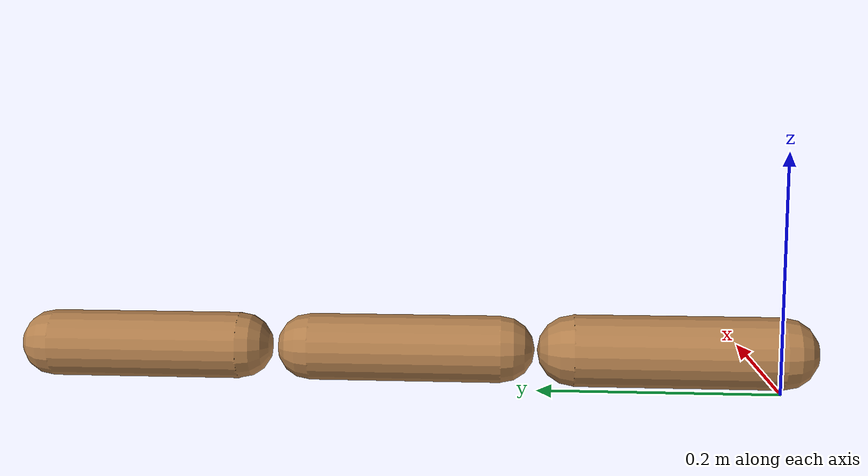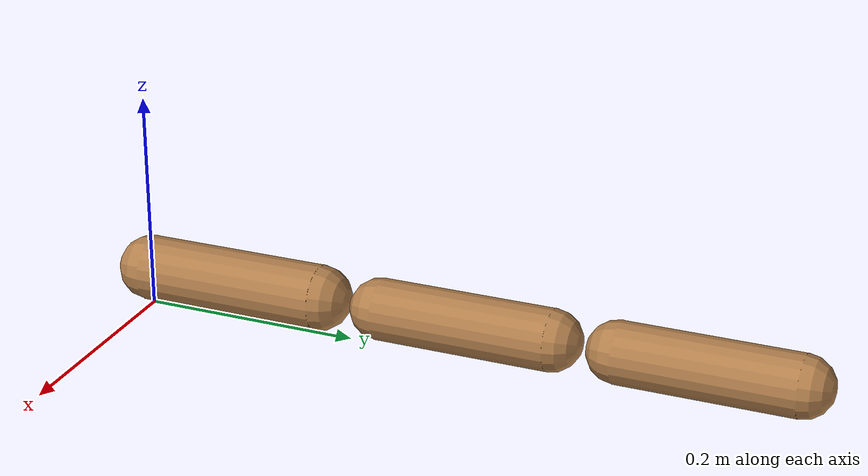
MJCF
<mujoco model="planar point mass">
    <visual>
        <quality shadowsize="2048" />
        <headlight ambient="0.4 0.4 0.4" diffuse="0.8 0.8 0.8" specular="0.1 0.1 0.1" />
    </visual>

    <!-- Time step configuration: critical for simulation stability -->
    <option impratio="10" iterations="1" ls_iterations="1" timestep="0.006" solver="CG">
        <flag eulerdamp="disable"/>
    </option>

    <asset>
        <!-- Textures and Materials -->
        <texture type="skybox" name="skybox" builtin="gradient" mark="random" rgb1="0.4 0.6 0.8" rgb2="0 0 0" markrgb="1 1 1" width="800" height="4800" />
        <texture type="2d" name="grid" builtin="checker" mark="edge" rgb1="0.1 0.2 0.3" rgb2="0.2 0.3 0.4" markrgb="0.2 0.3 0.4" width="300" height="300" />
        <material name="grid" texture="grid" texuniform="true" reflectance="0.2" />
        <material name="self" rgba="0.7 0.5 0.3 1" />
        <material name="self_default" rgba="0.7 0.5 0.3 1" />
        <material name="self_highlight" rgba="0 0.5 0.3 1" />
        <material name="effector" rgba="0.7 0.4 0.2 1" />
        <material name="effector_default" rgba="0.7 0.4 0.2 1" />
        <material name="effector_highlight" rgba="0 0.5 0.3 1" />
        <material name="decoration" rgba="0.3 0.5 0.7 1" />
        <material name="eye" rgba="0 0.2 1 1" />
        <material name="target" rgba="0.6 0.3 0.3 1" />
        <material name="target_default" rgba="0.6 0.3 0.3 1" />
        <material name="target_highlight" rgba="0.6 0.3 0.3 0.4" />
    </asset>

    <worldbody>
        <!-- Finger Body with Proximal, Distal, and Distal2 Geoms -->
        <body name="finger" pos="0 0 0.035" quat="0.707107 0.707107 0 0">
            <!-- Proximal Joint and Geom with increased damping -->
            <joint name="proximal" range="0 6.28318530718" axis="0 -1 0" damping="0.3" limited="false" />
            <geom name="proximal" type="capsule" material="self" size="0.03" fromto="0 0 0 0 0 -0.17"
                  contype="1" conaffinity="2" />

            <!-- Distal Body with Joint and Geom with increased damping -->
            <body name="distal" pos="0 0 -0.23">
                <joint name="distal" range="0 6.28318530718" axis="0 -1 0" damping="0.3" limited="false"/>
                <geom name="distal" type="capsule" size="0.028" material="self" fromto="0 0 0 0 0 -0.16"
                      contype="1" conaffinity="2"/>

                <!-- Distal2 Body with Joint and Geom with increased damping -->
                <body name="distal2" pos="0 0 -0.22">
                    <joint name="distal2" range="0 6.28318530718" axis="0 -1 0" damping="0.3" limited="false"/>
                    <geom name="distal2" type="capsule" size="0.028" material="self" fromto="0 0 0 0 0 -0.16"
                          contype="1" conaffinity="2"/>
                </body>
            </body>
        </body>
    </worldbody>

    <actuator>
        <general name="proximal" joint="proximal" gear="0.45 0 0 0 0 0" ctrlrange="-1 1" />
        <general name="distal" joint="distal" gear="0.425 0 0 0 0 0" ctrlrange="-1 1" />
        <general name="distal2" joint="distal2" gear="0.325 0 0 0 0 0" ctrlrange="-1 1" />
    </actuator>
</mujoco>
